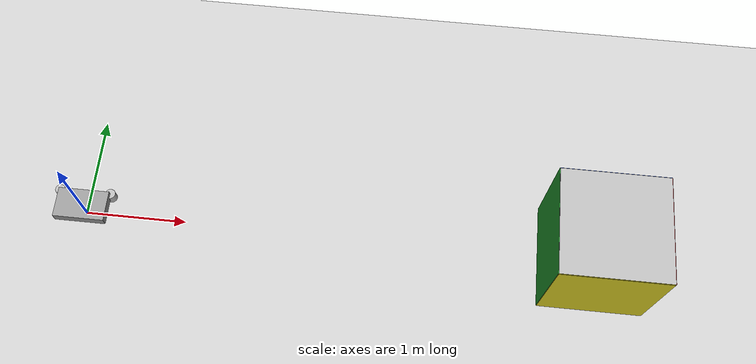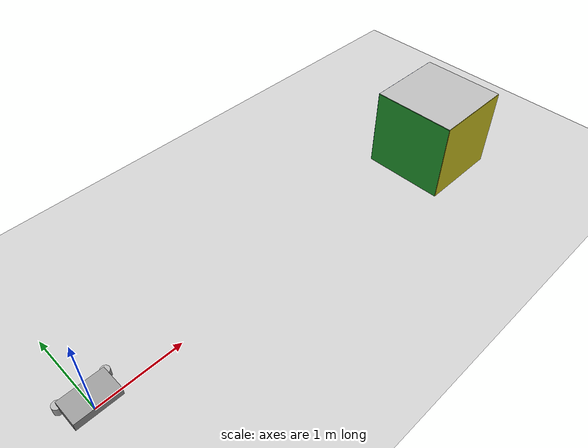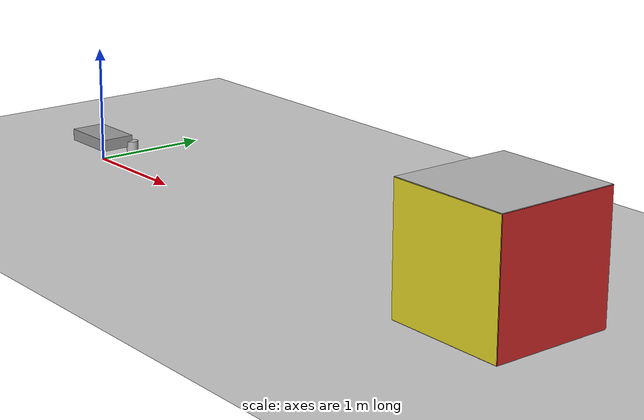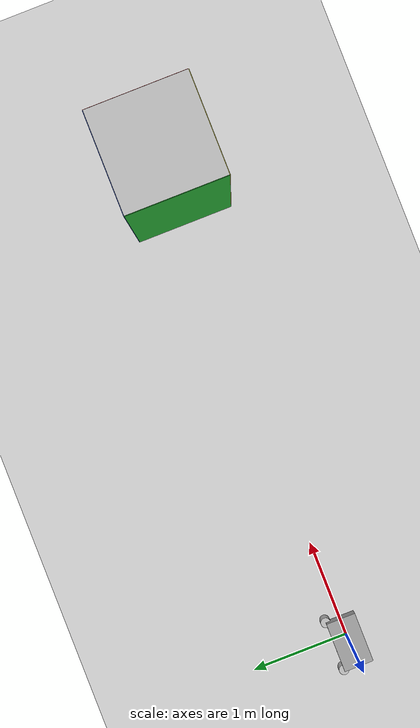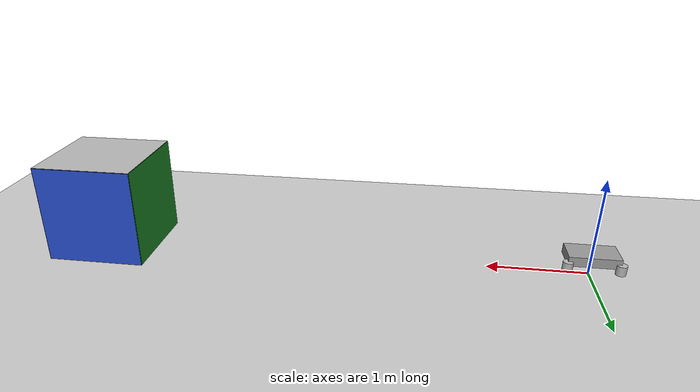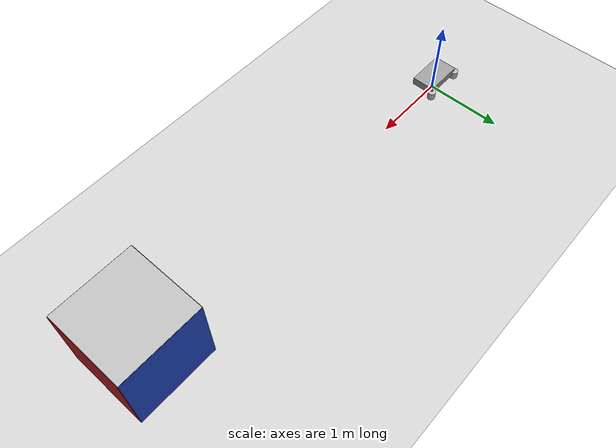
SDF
<?xml version='1.0'?>
<sdf version='1.6'>
  <world name='default'>
    <!-- Standard ground plane and sun -->
    <include>
      <uri>model://ground_plane</uri>
    </include>
    <include>
      <uri>model://sun</uri>
    </include>

    <!-- Spawn the colored box model at (5,0,0.5) -->
    <include>
      <uri>model://colored_box</uri>
      <pose>5 0 0.5 0 0 0</pose>
    </include>

    <!-- Spawn the camera robot at (0,0,0.1) -->
    <include>
      <uri>model://camera_robot</uri>
      <pose>0 0 0.1 0 0 0</pose>
    </include>

    <physics type='ode'>
      <max_step_size>0.01</max_step_size>
      <real_time_factor>1.0</real_time_factor>
      <update_rate>100.0</update_rate>
    </physics>
  </world>
</sdf>

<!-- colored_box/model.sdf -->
<sdf version='1.6'>
  <model name='colored_box'>
    <static>true</static>
    <link name='link'>
      <collision name='collision'>
        <geometry>
          <box>
            <size>1 1 1</size>
          </box>
        </geometry>
      </collision>

      <!-- Front face (Red) -->
      <visual name='face_front'>
        <pose>0.5 0 0 0 0 0</pose>
        <geometry>
          <box>
            <size>0.01 1 1</size>
          </box>
        </geometry>
        <material>
          <script>
            <uri>model://colored_box/materials/scripts</uri>
            <name>Gazebo/Red</name>
          </script>
        </material>
      </visual>

      <!-- Back face (Green) -->
      <visual name='face_back'>
        <pose>-0.5 0 0 0 0 0</pose>
        <geometry>
          <box>
            <size>0.01 1 1</size>
          </box>
        </geometry>
        <material>
          <script>
            <uri>model://colored_box/materials/scripts</uri>
            <name>Gazebo/Green</name>
          </script>
        </material>
      </visual>

      <!-- Right face (Blue) -->
      <visual name='face_right'>
        <pose>0 0.5 0 0 0 0</pose>
        <geometry>
          <box>
            <size>1 0.01 1</size>
          </box>
        </geometry>
        <material>
          <script>
            <uri>model://colored_box/materials/scripts</uri>
            <name>Gazebo/Blue</name>
          </script>
        </material>
      </visual>

      <!-- Left face (Yellow) -->
      <visual name='face_left'>
        <pose>0 -0.5 0 0 0 0</pose>
        <geometry>
          <box>
            <size>1 0.01 1</size>
          </box>
        </geometry>
        <material>
          <script>
            <uri>model://colored_box/materials/scripts</uri>
            <name>Gazebo/Yellow</name>
          </script>
        </material>
      </visual>

      <!-- Top face (default gray) -->
      <visual name='face_top'>
        <pose>0 0 0.5 0 0 0</pose>
        <geometry>
          <box>
            <size>1 1 0.01</size>
          </box>
        </geometry>
      </visual>

      <!-- Bottom face (default gray) -->
      <visual name='face_bottom'>
        <pose>0 0 -0.5 0 0 0</pose>
        <geometry>
          <box>
            <size>1 1 0.01</size>
          </box>
        </geometry>
      </visual>
    </link>
  </model>
</sdf>

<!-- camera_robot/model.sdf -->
<sdf version='1.6'>
  <model name='camera_robot'>
    <static>false</static>
    <link name='chassis'>
      <pose>0 0 0.1 0 0 0</pose>
      <collision name='collision'>
        <geometry>
          <box>
            <size>0.5 0.3 0.1</size>
          </box>
        </geometry>
      </collision>
      <visual name='visual'>
        <geometry>
          <box>
            <size>0.5 0.3 0.1</size>
          </box>
        </geometry>
        <material>
          <script>
            <uri>file://media/materials/scripts/gazebo.material</uri>
            <name>Gazebo/Gray</name>
          </script>
        </material>
      </visual>
    </link>

    <link name='wheel_left'>
      <pose>0.25 0.15 0.05 0 0 0</pose>
      <collision name='collision'>
        <geometry>
          <cylinder>
            <radius>0.05</radius>
            <length>0.1</length>
          </cylinder>
        </geometry>
      </collision>
      <visual name='visual'>
        <geometry>
          <cylinder>
            <radius>0.05</radius>
            <length>0.1</length>
          </cylinder>
        </geometry>
      </visual>
    </link>

    <link name='wheel_right'>
      <pose>-0.25 0.15 0.05 0 0 0</pose>
      <collision name='collision'>
        <geometry>
          <cylinder>
            <radius>0.05</radius>
            <length>0.1</length>
          </cylinder>
        </geometry>
      </collision>
      <visual name='visual'>
        <geometry>
          <cylinder>
            <radius>0.05</radius>
            <length>0.1</length>
          </cylinder>
        </geometry>
      </visual>
    </link>

    <joint name='joint_left' type='revolute'>
      <parent>chassis</parent>
      <child>wheel_left</child>
      <axis>
        <xyz>0 0 1</xyz>
        <limit>
          <lower>-10</lower>
          <upper>10</upper>
        </limit>
      </axis>
    </joint>

    <joint name='joint_right' type='revolute'>
      <parent>chassis</parent>
      <child>wheel_right</child>
      <axis>
        <xyz>0 0 1</xyz>
        <limit>
          <lower>-10</lower>
          <upper>10</upper>
        </limit>
      </axis>
    </joint>

    <link name='camera_link'>
      <pose>0 0 0.15 0 0 0</pose>
      <sensor name='camera' type='camera'>
        <pose>0 0 0 0 0 0</pose>
        <camera>
          <horizontal_fov>1.047</horizontal_fov>
          <image>
            <width>640</width>
            <height>480</height>
            <format>R8G8B8</format>
          </image>
          <clip>
            <near>0.1</near>
            <far>100</far>
          </clip>
        </camera>
        <plugin name='camera_plugin' filename='libgazebo_ros_camera.so'>
          <ros>
            <namespace>/</namespace>
          </ros>
          <cameraName>camera</cameraName>
          <imageTopicName>/camera/image_raw</imageTopicName>
          <imageWidth>640</imageWidth>
          <imageHeight>480</imageHeight>
          <updateRate>30.0</updateRate>
        </plugin>
      </sensor>
    </link>

    <plugin name='diff_drive' filename='libgazebo_ros_diff_drive.so'>
      <ros>
        <namespace>/</namespace>
      </ros>
      <left_joint>joint_left</left_joint>
      <right_joint>joint_right</right_joint>
      <wheel_separation>0.5</wheel_separation>
      <wheel_radius>0.05</wheel_radius>
      <cmd_vel_topic>/cmd_vel</cmd_vel_topic>
      <odom_topic>/odom</odom_topic>
      <publish_odom>true</publish_odom>
      <publish_odom_tf>true</publish_odom_tf>
      <update_rate>100</update_rate>
    </plugin>
  </model>
</sdf>
